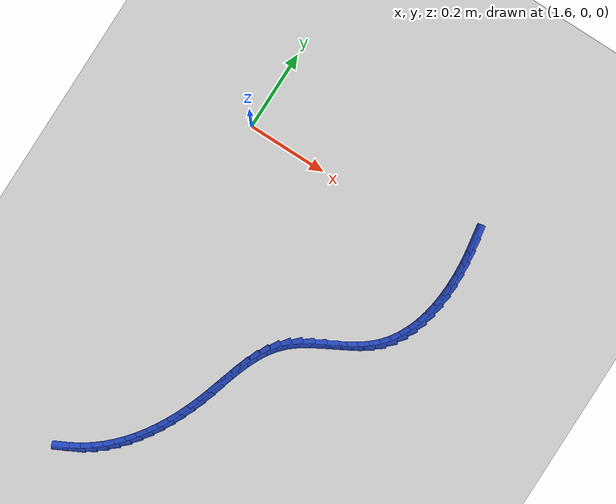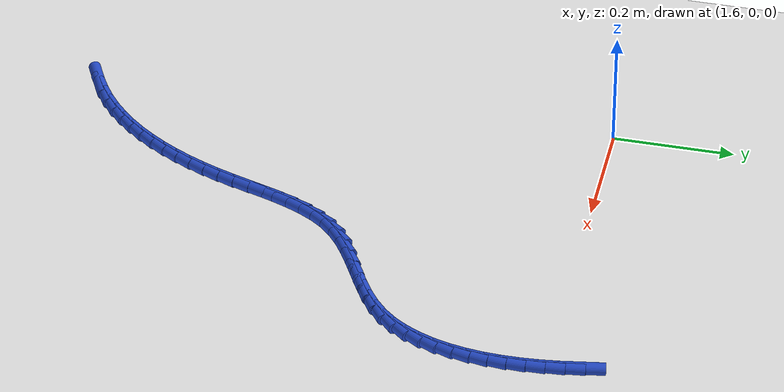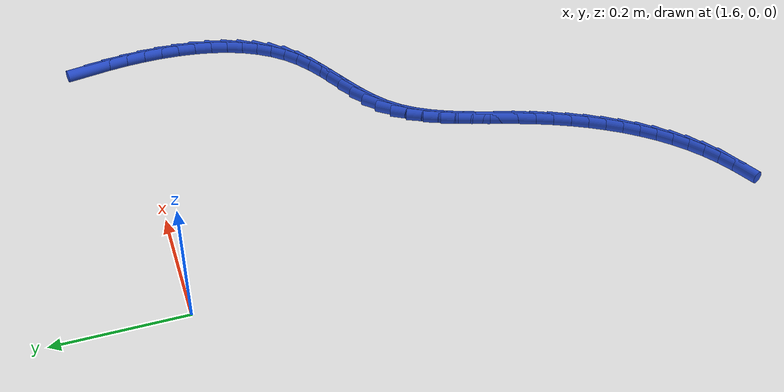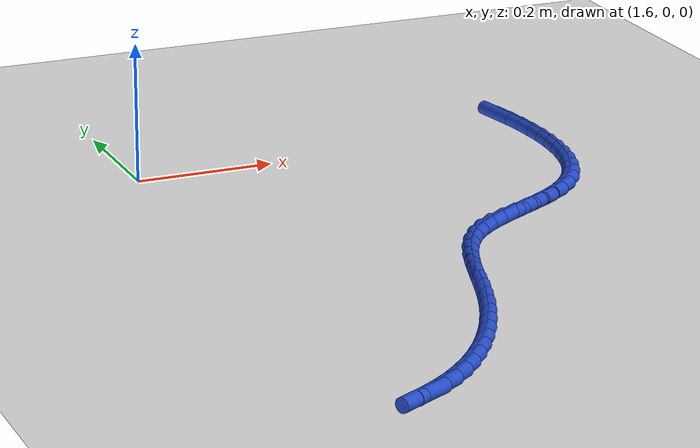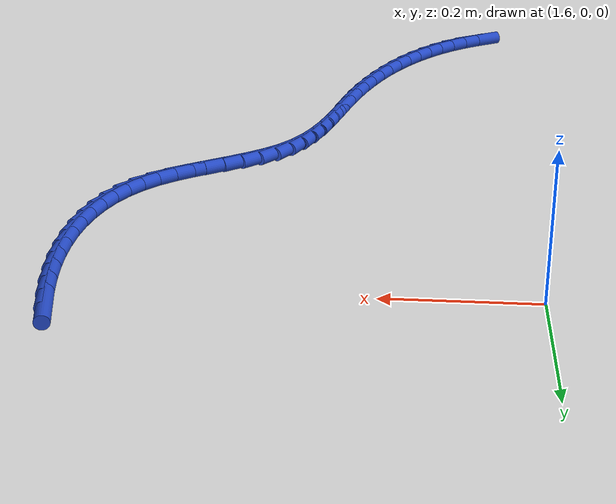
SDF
<sdf version="1.6">
 <world name="default">
  <model name="ground_plane">
   <static>1</static>
   <link name="link">
    <collision name="collision">
     <geometry><plane><normal>0 0 1</normal><size>100 100</size></plane></geometry>
     <surface><friction><ode><mu>100</mu><mu2>50</mu2></ode></friction></surface>
    </collision>
    <visual name="visual">
     <cast_shadows>0</cast_shadows>
     <geometry><plane><normal>0 0 1</normal><size>100 100</size></plane></geometry>
     <material>
      <script><uri>file://media/materials/scripts/gazebo.material</uri><name>Gazebo/WhiteGlow</name></script>
     </material>
    </visual>
   </link>
  </model>
  <model name="line">
   <link name="link_124">
    <pose>2.1866727375455097 0.05505772916667613 0.01 0 1.57 -1.4072390504324168</pose>
    <collision name="collision">
     <geometry><cylinder><radius>0.01</radius><length>0.08</length></cylinder></geometry>
    </collision>
    <visual name="visual">
     <material>
      <script><name>Gazebo/Blue</name><uri>file://media/materials/scripts/gazebo.material</uri></script>
     </material>
     <geometry><cylinder><radius>0.01</radius><length>0.08</length></cylinder></geometry>
    </visual>
   </link>
   <link name="link_125">
    <pose>2.191684403244378 0.02468979376579241 0.01 0 1.57 -1.452558193528334</pose>
    <collision name="collision">
     <geometry><cylinder><radius>0.01</radius><length>0.08</length></cylinder></geometry>
    </collision>
    <visual name="visual">
     <material>
      <script><name>Gazebo/Blue</name><uri>file://media/materials/scripts/gazebo.material</uri></script>
     </material>
     <geometry><cylinder><radius>0.01</radius><length>0.08</length></cylinder></geometry>
    </visual>
   </link>
   <link name="link_126">
    <pose>2.195297637474738 -0.005726624666741667 0.01 0 1.57 -1.501562536460191</pose>
    <collision name="collision">
     <geometry><cylinder><radius>0.01</radius><length>0.08</length></cylinder></geometry>
    </collision>
    <visual name="visual">
     <material>
      <script><name>Gazebo/Blue</name><uri>file://media/materials/scripts/gazebo.material</uri></script>
     </material>
     <geometry><cylinder><radius>0.01</radius><length>0.08</length></cylinder></geometry>
    </visual>
   </link>
   <link name="link_127">
    <pose>2.1973964129864 -0.03599249720537283 0.01 0 1.57 -1.555144279706995</pose>
    <collision name="collision">
     <geometry><cylinder><radius>0.01</radius><length>0.08</length></cylinder></geometry>
    </collision>
    <visual name="visual">
     <material>
      <script><name>Gazebo/Blue</name><uri>file://media/materials/scripts/gazebo.material</uri></script>
     </material>
     <geometry><cylinder><radius>0.01</radius><length>0.08</length></cylinder></geometry>
    </visual>
   </link>
   <link name="link_128">
    <pose>2.1978647025291718 -0.06590879492454765 0.01 0 1.57 1.5272989574182747</pose>
    <collision name="collision">
     <geometry><cylinder><radius>0.01</radius><length>0.08</length></cylinder></geometry>
    </collision>
    <visual name="visual">
     <material>
      <script><name>Gazebo/Blue</name><uri>file://media/materials/scripts/gazebo.material</uri></script>
     </material>
     <geometry><cylinder><radius>0.01</radius><length>0.08</length></cylinder></geometry>
    </visual>
   </link>
   <link name="link_129">
    <pose>2.1965864788528635 -0.0952764888987128 0.01 0 1.57 1.4614937465952729</pose>
    <collision name="collision">
     <geometry><cylinder><radius>0.01</radius><length>0.08</length></cylinder></geometry>
    </collision>
    <visual name="visual">
     <material>
      <script><name>Gazebo/Blue</name><uri>file://media/materials/scripts/gazebo.material</uri></script>
     </material>
     <geometry><cylinder><radius>0.01</radius><length>0.08</length></cylinder></geometry>
    </visual>
   </link>
   <link name="link_130">
    <pose>2.1934457147072846 -0.12389655020231485 0.01 0 1.57 1.3878731935696234</pose>
    <collision name="collision">
     <geometry><cylinder><radius>0.01</radius><length>0.08</length></cylinder></geometry>
    </collision>
    <visual name="visual">
     <material>
      <script><name>Gazebo/Blue</name><uri>file://media/materials/scripts/gazebo.material</uri></script>
     </material>
     <geometry><cylinder><radius>0.01</radius><length>0.08</length></cylinder></geometry>
    </visual>
   </link>
   <link name="link_131">
    <pose>2.188326382842244 -0.1515699499098005 0.01 0 1.57 1.3052778391122104</pose>
    <collision name="collision">
     <geometry><cylinder><radius>0.01</radius><length>0.08</length></cylinder></geometry>
    </collision>
    <visual name="visual">
     <material>
      <script><name>Gazebo/Blue</name><uri>file://media/materials/scripts/gazebo.material</uri></script>
     </material>
     <geometry><cylinder><radius>0.01</radius><length>0.08</length></cylinder></geometry>
    </visual>
   </link>
   <link name="link_132">
    <pose>2.1811124560075505 -0.17809765909561628 0.01 0 1.57 1.2126897915211439</pose>
    <collision name="collision">
     <geometry><cylinder><radius>0.01</radius><length>0.08</length></cylinder></geometry>
    </collision>
    <visual name="visual">
     <material>
      <script><name>Gazebo/Blue</name><uri>file://media/materials/scripts/gazebo.material</uri></script>
     </material>
     <geometry><cylinder><radius>0.01</radius><length>0.08</length></cylinder></geometry>
    </visual>
   </link>
   <link name="link_133">
    <pose>2.1716879069530135 -0.20328064883420882 0.01 0 1.57 1.1094669426027222</pose>
    <collision name="collision">
     <geometry><cylinder><radius>0.01</radius><length>0.08</length></cylinder></geometry>
    </collision>
    <visual name="visual">
     <material>
      <script><name>Gazebo/Blue</name><uri>file://media/materials/scripts/gazebo.material</uri></script>
     </material>
     <geometry><cylinder><radius>0.01</radius><length>0.08</length></cylinder></geometry>
    </visual>
   </link>
   <link name="link_134">
    <pose>2.159936708428443 -0.22691989020002484 0.01 0 1.57 0.9956686409507595</pose>
    <collision name="collision">
     <geometry><cylinder><radius>0.01</radius><length>0.08</length></cylinder></geometry>
    </collision>
    <visual name="visual">
     <material>
      <script><name>Gazebo/Blue</name><uri>file://media/materials/scripts/gazebo.material</uri></script>
     </material>
     <geometry><cylinder><radius>0.01</radius><length>0.08</length></cylinder></geometry>
    </visual>
   </link>
   <link name="link_135">
    <pose>2.1457428331836472 -0.24881635426751092 0.01 0 1.57 0.8724107966439786</pose>
    <collision name="collision">
     <geometry><cylinder><radius>0.01</radius><length>0.08</length></cylinder></geometry>
    </collision>
    <visual name="visual">
     <material>
      <script><name>Gazebo/Blue</name><uri>file://media/materials/scripts/gazebo.material</uri></script>
     </material>
     <geometry><cylinder><radius>0.01</radius><length>0.08</length></cylinder></geometry>
    </visual>
   </link>
   <link name="link_136">
    <pose>2.1289902539684364 -0.26877101211111376 0.01 0 1.57 0.7426431181001731</pose>
    <collision name="collision">
     <geometry><cylinder><radius>0.01</radius><length>0.08</length></cylinder></geometry>
    </collision>
    <visual name="visual">
     <material>
      <script><name>Gazebo/Blue</name><uri>file://media/materials/scripts/gazebo.material</uri></script>
     </material>
     <geometry><cylinder><radius>0.01</radius><length>0.08</length></cylinder></geometry>
    </visual>
   </link>
   <link name="link_137">
    <pose>2.1095734317460306 -0.28659464604581575 0.01 0 1.57 0.6282031785640465</pose>
    <collision name="collision">
     <geometry><cylinder><radius>0.01</radius><length>0.08</length></cylinder></geometry>
    </collision>
    <visual name="visual">
     <material>
      <script><name>Gazebo/Blue</name><uri>file://media/materials/scripts/gazebo.material</uri></script>
     </material>
     <geometry><cylinder><radius>0.01</radius><length>0.08</length></cylinder></geometry>
    </visual>
   </link>
   <link name="link_138">
    <pose>2.0877552243157305 -0.3024426566575685 0.01 0 1.57 0.5514658785610278</pose>
    <collision name="collision">
     <geometry><cylinder><radius>0.01</radius><length>0.08</length></cylinder></geometry>
    </collision>
    <visual name="visual">
     <material>
      <script><name>Gazebo/Blue</name><uri>file://media/materials/scripts/gazebo.material</uri></script>
     </material>
     <geometry><cylinder><radius>0.01</radius><length>0.08</length></cylinder></geometry>
    </visual>
   </link>
   <link name="link_139">
    <pose>2.0642554629618655 -0.31689792217834367 0.01 0 1.57 0.5101620726767288</pose>
    <collision name="collision">
     <geometry><cylinder><radius>0.01</radius><length>0.08</length></cylinder></geometry>
    </collision>
    <visual name="visual">
     <material>
      <script><name>Gazebo/Blue</name><uri>file://media/materials/scripts/gazebo.material</uri></script>
     </material>
     <geometry><cylinder><radius>0.01</radius><length>0.08</length></cylinder></geometry>
    </visual>
   </link>
   <link name="link_140">
    <pose>2.039822440725519 -0.3305699455025466 0.01 0 1.57 0.5015445892057872</pose>
    <collision name="collision">
     <geometry><cylinder><radius>0.01</radius><length>0.08</length></cylinder></geometry>
    </collision>
    <visual name="visual">
     <material>
      <script><name>Gazebo/Blue</name><uri>file://media/materials/scripts/gazebo.material</uri></script>
     </material>
     <geometry><cylinder><radius>0.01</radius><length>0.08</length></cylinder></geometry>
    </visual>
   </link>
   <link name="link_141">
    <pose>2.0152044506477766 -0.3440682295245824 0.01 0 1.57 0.5250343229713651</pose>
    <collision name="collision">
     <geometry><cylinder><radius>0.01</radius><length>0.08</length></cylinder></geometry>
    </collision>
    <visual name="visual">
     <material>
      <script><name>Gazebo/Blue</name><uri>file://media/materials/scripts/gazebo.material</uri></script>
     </material>
     <geometry><cylinder><radius>0.01</radius><length>0.08</length></cylinder></geometry>
    </visual>
   </link>
   <link name="link_142">
    <pose>1.9911497857697225 -0.35800227713885646 0.01 0 1.57 0.582419980703319</pose>
    <collision name="collision">
     <geometry><cylinder><radius>0.01</radius><length>0.08</length></cylinder></geometry>
    </collision>
    <visual name="visual">
     <material>
      <script><name>Gazebo/Blue</name><uri>file://media/materials/scripts/gazebo.material</uri></script>
     </material>
     <geometry><cylinder><radius>0.01</radius><length>0.08</length></cylinder></geometry>
    </visual>
   </link>
   <link name="link_143">
    <pose>1.9684067391324422 -0.372981591239774 0.01 0 1.57 0.6773174049404583</pose>
    <collision name="collision">
     <geometry><cylinder><radius>0.01</radius><length>0.08</length></cylinder></geometry>
    </collision>
    <visual name="visual">
     <material>
      <script><name>Gazebo/Blue</name><uri>file://media/materials/scripts/gazebo.material</uri></script>
     </material>
     <geometry><cylinder><radius>0.01</radius><length>0.08</length></cylinder></geometry>
    </visual>
   </link>
   <link name="link_144">
    <pose>1.94772360377702 -0.38961567472174014 0.01 0 1.57 0.8110532525669484</pose>
    <collision name="collision">
     <geometry><cylinder><radius>0.01</radius><length>0.08</length></cylinder></geometry>
    </collision>
    <visual name="visual">
     <material>
      <script><name>Gazebo/Blue</name><uri>file://media/materials/scripts/gazebo.material</uri></script>
     </material>
     <geometry><cylinder><radius>0.01</radius><length>0.08</length></cylinder></geometry>
    </visual>
   </link>
   <link name="link_145">
    <pose>1.9298039030647112 -0.4084792610350672 0.01 0 1.57 0.9499784497874056</pose>
    <collision name="collision">
     <geometry><cylinder><radius>0.01</radius><length>0.08</length></cylinder></geometry>
    </collision>
    <visual name="visual">
     <material>
      <script><name>Gazebo/Blue</name><uri>file://media/materials/scripts/gazebo.material</uri></script>
     </material>
     <geometry><cylinder><radius>0.01</radius><length>0.08</length></cylinder></geometry>
    </visual>
   </link>
   <link name="link_146">
    <pose>1.9146806711363413 -0.4296263620713575 0.01 0 1.57 1.0641615760753298</pose>
    <collision name="collision">
     <geometry><cylinder><radius>0.01</radius><length>0.08</length></cylinder></geometry>
    </collision>
    <visual name="visual">
     <material>
      <script><name>Gazebo/Blue</name><uri>file://media/materials/scripts/gazebo.material</uri></script>
     </material>
     <geometry><cylinder><radius>0.01</radius><length>0.08</length></cylinder></geometry>
    </visual>
   </link>
   <link name="link_147">
    <pose>1.9018704900565335 -0.4527098979194976 0.01 0 1.57 1.151464897468805</pose>
    <collision name="collision">
     <geometry><cylinder><radius>0.01</radius><length>0.08</length></cylinder></geometry>
    </collision>
    <visual name="visual">
     <material>
      <script><name>Gazebo/Blue</name><uri>file://media/materials/scripts/gazebo.material</uri></script>
     </material>
     <geometry><cylinder><radius>0.01</radius><length>0.08</length></cylinder></geometry>
    </visual>
   </link>
   <link name="link_148">
    <pose>1.8908766391379417 -0.47737245736172856 0.01 0 1.57 1.2131209045854345</pose>
    <collision name="collision">
     <geometry><cylinder><radius>0.01</radius><length>0.08</length></cylinder></geometry>
    </collision>
    <visual name="visual">
     <material>
      <script><name>Gazebo/Blue</name><uri>file://media/materials/scripts/gazebo.material</uri></script>
     </material>
     <geometry><cylinder><radius>0.01</radius><length>0.08</length></cylinder></geometry>
    </visual>
   </link>
   <link name="link_149">
    <pose>1.8812023976932222 -0.5032566291802917 0.01 0 1.57 1.2512267195334918</pose>
    <collision name="collision">
     <geometry><cylinder><radius>0.01</radius><length>0.08</length></cylinder></geometry>
    </collision>
    <visual name="visual">
     <material>
      <script><name>Gazebo/Blue</name><uri>file://media/materials/scripts/gazebo.material</uri></script>
     </material>
     <geometry><cylinder><radius>0.01</radius><length>0.08</length></cylinder></geometry>
    </visual>
   </link>
   <link name="link_150">
    <pose>1.8723510450350305 -0.5300050021574284 0.01 0 1.57 1.2676458722781239</pose>
    <collision name="collision">
     <geometry><cylinder><radius>0.01</radius><length>0.08</length></cylinder></geometry>
    </collision>
    <visual name="visual">
     <material>
      <script><name>Gazebo/Blue</name><uri>file://media/materials/scripts/gazebo.material</uri></script>
     </material>
     <geometry><cylinder><radius>0.01</radius><length>0.08</length></cylinder></geometry>
    </visual>
   </link>
   <link name="link_151">
    <pose>1.8638258604760218 -0.5572601650753797 0.01 0 1.57 1.2635353472674102</pose>
    <collision name="collision">
     <geometry><cylinder><radius>0.01</radius><length>0.08</length></cylinder></geometry>
    </collision>
    <visual name="visual">
     <material>
      <script><name>Gazebo/Blue</name><uri>file://media/materials/scripts/gazebo.material</uri></script>
     </material>
     <geometry><cylinder><radius>0.01</radius><length>0.08</length></cylinder></geometry>
    </visual>
   </link>
   <link name="link_152">
    <pose>1.8551301233288517 -0.5846647067163872 0.01 0 1.57 1.2392963809554025</pose>
    <collision name="collision">
     <geometry><cylinder><radius>0.01</radius><length>0.08</length></cylinder></geometry>
    </collision>
    <visual name="visual">
     <material>
      <script><name>Gazebo/Blue</name><uri>file://media/materials/scripts/gazebo.material</uri></script>
     </material>
     <geometry><cylinder><radius>0.01</radius><length>0.08</length></cylinder></geometry>
    </visual>
   </link>
   <link name="link_153">
    <pose>1.845768753666121 -0.611862047389864 0.01 0 1.57 1.2006489483367566</pose>
    <collision name="collision">
     <geometry><cylinder><radius>0.01</radius><length>0.08</length></cylinder></geometry>
    </collision>
    <visual name="visual">
     <material>
      <script><name>Gazebo/Blue</name><uri>file://media/materials/scripts/gazebo.material</uri></script>
     </material>
     <geometry><cylinder><radius>0.01</radius><length>0.08</length></cylinder></geometry>
    </visual>
   </link>
   <link name="link_154">
    <pose>1.83540326616127 -0.6385749685975777 0.01 0 1.57 1.1581404140767528</pose>
    <collision name="collision">
     <geometry><cylinder><radius>0.01</radius><length>0.08</length></cylinder></geometry>
    </collision>
    <visual name="visual">
     <material>
      <script><name>Gazebo/Blue</name><uri>file://media/materials/scripts/gazebo.material</uri></script>
     </material>
     <geometry><cylinder><radius>0.01</radius><length>0.08</length></cylinder></geometry>
    </visual>
   </link>
   <link name="link_155">
    <pose>1.8239790139259384 -0.6646700994373829 0.01 0 1.57 1.1125849240388668</pose>
    <collision name="collision">
     <geometry><cylinder><radius>0.01</radius><length>0.08</length></cylinder></geometry>
    </collision>
    <visual name="visual">
     <material>
      <script><name>Gazebo/Blue</name><uri>file://media/materials/scripts/gazebo.material</uri></script>
     </material>
     <geometry><cylinder><radius>0.01</radius><length>0.08</length></cylinder></geometry>
    </visual>
   </link>
   <link name="link_156">
    <pose>1.8114712971502254 -0.6900292460045622 0.01 0 1.57 1.063635152017713</pose>
    <collision name="collision">
     <geometry><cylinder><radius>0.01</radius><length>0.08</length></cylinder></geometry>
    </collision>
    <visual name="visual">
     <material>
      <script><name>Gazebo/Blue</name><uri>file://media/materials/scripts/gazebo.material</uri></script>
     </material>
     <geometry><cylinder><radius>0.01</radius><length>0.08</length></cylinder></geometry>
    </visual>
   </link>
   <link name="link_157">
    <pose>1.7978554160242306 -0.7145342143943985 0.01 0 1.57 1.010949015387678</pose>
    <collision name="collision">
     <geometry><cylinder><radius>0.01</radius><length>0.08</length></cylinder></geometry>
    </collision>
    <visual name="visual">
     <material>
      <script><name>Gazebo/Blue</name><uri>file://media/materials/scripts/gazebo.material</uri></script>
     </material>
     <geometry><cylinder><radius>0.01</radius><length>0.08</length></cylinder></geometry>
    </visual>
   </link>
   <link name="link_158">
    <pose>1.7831066707380532 -0.7380668107021744 0.01 0 1.57 0.9542065562646651</pose>
    <collision name="collision">
     <geometry><cylinder><radius>0.01</radius><length>0.08</length></cylinder></geometry>
    </collision>
    <visual name="visual">
     <material>
      <script><name>Gazebo/Blue</name><uri>file://media/materials/scripts/gazebo.material</uri></script>
     </material>
     <geometry><cylinder><radius>0.01</radius><length>0.08</length></cylinder></geometry>
    </visual>
   </link>
   <link name="link_159">
    <pose>1.7672003614817935 -0.7605088410231726 0.01 0 1.57 0.8931343432506521</pose>
    <collision name="collision">
     <geometry><cylinder><radius>0.01</radius><length>0.08</length></cylinder></geometry>
    </collision>
    <visual name="visual">
     <material>
      <script><name>Gazebo/Blue</name><uri>file://media/materials/scripts/gazebo.material</uri></script>
     </material>
     <geometry><cylinder><radius>0.01</radius><length>0.08</length></cylinder></geometry>
    </visual>
   </link>
   <link name="link_160">
    <pose>1.750111788445551 -0.7817421114526759 0.01 0 1.57 0.8275381721430211</pose>
    <collision name="collision">
     <geometry><cylinder><radius>0.01</radius><length>0.08</length></cylinder></geometry>
    </collision>
    <visual name="visual">
     <material>
      <script><name>Gazebo/Blue</name><uri>file://media/materials/scripts/gazebo.material</uri></script>
     </material>
     <geometry><cylinder><radius>0.01</radius><length>0.08</length></cylinder></geometry>
    </visual>
   </link>
   <link name="link_161">
    <pose>1.7318162518194253 -0.8016484280859671 0.01 0 1.57 0.7573434869383932</pose>
    <collision name="collision">
     <geometry><cylinder><radius>0.01</radius><length>0.08</length></cylinder></geometry>
    </collision>
    <visual name="visual">
     <material>
      <script><name>Gazebo/Blue</name><uri>file://media/materials/scripts/gazebo.material</uri></script>
     </material>
     <geometry><cylinder><radius>0.01</radius><length>0.08</length></cylinder></geometry>
    </visual>
   </link>
   <link name="link_162">
    <pose>1.712289051793515 -0.8201095970183281 0.01 0 1.57 0.6826405540017623</pose>
    <collision name="collision">
     <geometry><cylinder><radius>0.01</radius><length>0.08</length></cylinder></geometry>
    </collision>
    <visual name="visual">
     <material>
      <script><name>Gazebo/Blue</name><uri>file://media/materials/scripts/gazebo.material</uri></script>
     </material>
     <geometry><cylinder><radius>0.01</radius><length>0.08</length></cylinder></geometry>
    </visual>
   </link>
   <link name="link_163">
    <pose>1.6915054885579206 -0.8370074243450425 0.01 0 1.57 0.6047123250463221</pose>
    <collision name="collision">
     <geometry><cylinder><radius>0.01</radius><length>0.08</length></cylinder></geometry>
    </collision>
    <visual name="visual">
     <material>
      <script><name>Gazebo/Blue</name><uri>file://media/materials/scripts/gazebo.material</uri></script>
     </material>
     <geometry><cylinder><radius>0.01</radius><length>0.08</length></cylinder></geometry>
    </visual>
   </link>
   <link name="link_164">
    <pose>1.6694553062319437 -0.8522458010861856 0.01 0 1.57 0.5324245680288998</pose>
    <collision name="collision">
     <geometry><cylinder><radius>0.01</radius><length>0.08</length></cylinder></geometry>
    </collision>
    <visual name="visual">
     <material>
      <script><name>Gazebo/Blue</name><uri>file://media/materials/scripts/gazebo.material</uri></script>
     </material>
     <geometry><cylinder><radius>0.01</radius><length>0.08</length></cylinder></geometry>
    </visual>
   </link>
   <link name="link_165">
    <pose>1.646251460350906 -0.8659170098565625 0.01 0 1.57 0.4702633732993096</pose>
    <collision name="collision">
     <geometry><cylinder><radius>0.01</radius><length>0.08</length></cylinder></geometry>
    </collision>
    <visual name="visual">
     <material>
      <script><name>Gazebo/Blue</name><uri>file://media/materials/scripts/gazebo.material</uri></script>
     </material>
     <geometry><cylinder><radius>0.01</radius><length>0.08</length></cylinder></geometry>
    </visual>
   </link>
  </model>
 </world>
</sdf>
